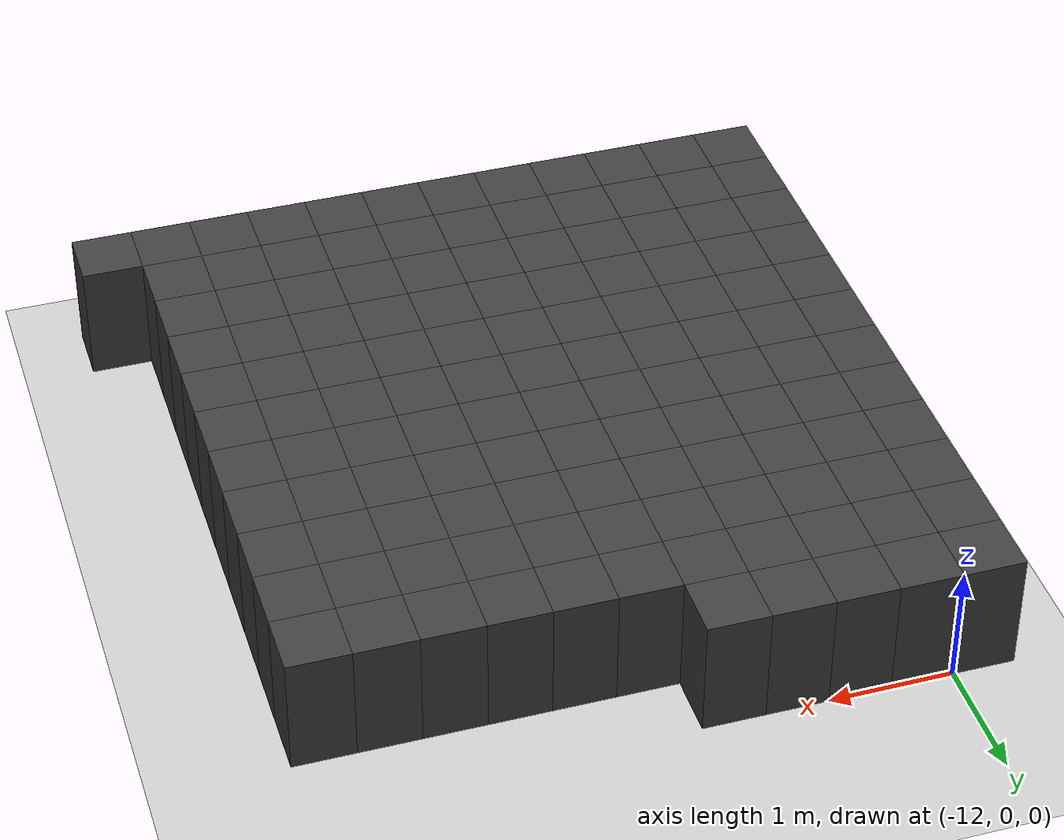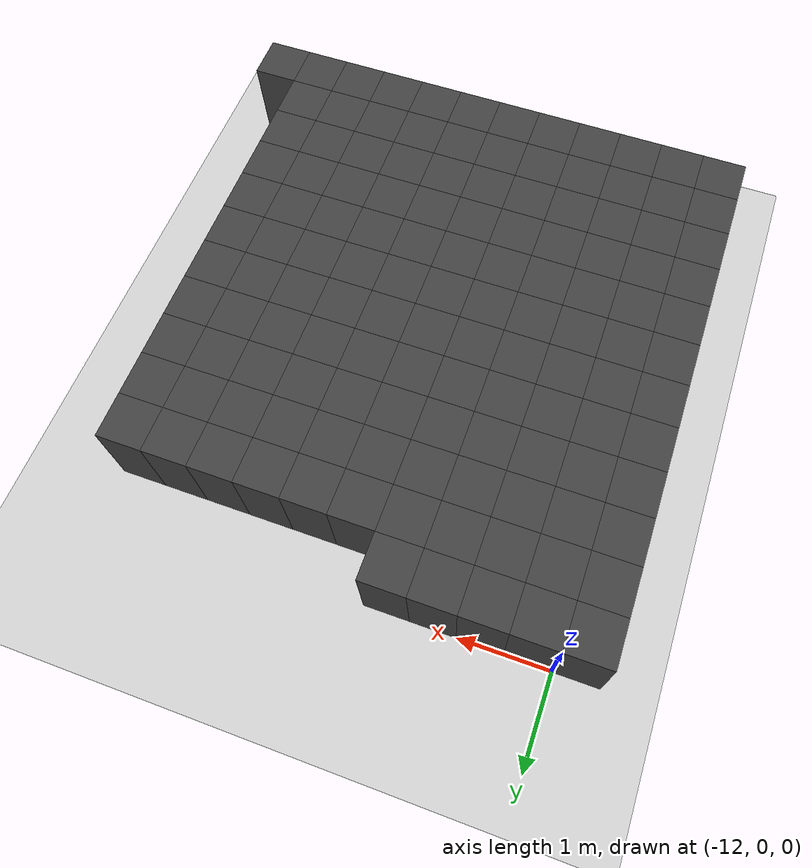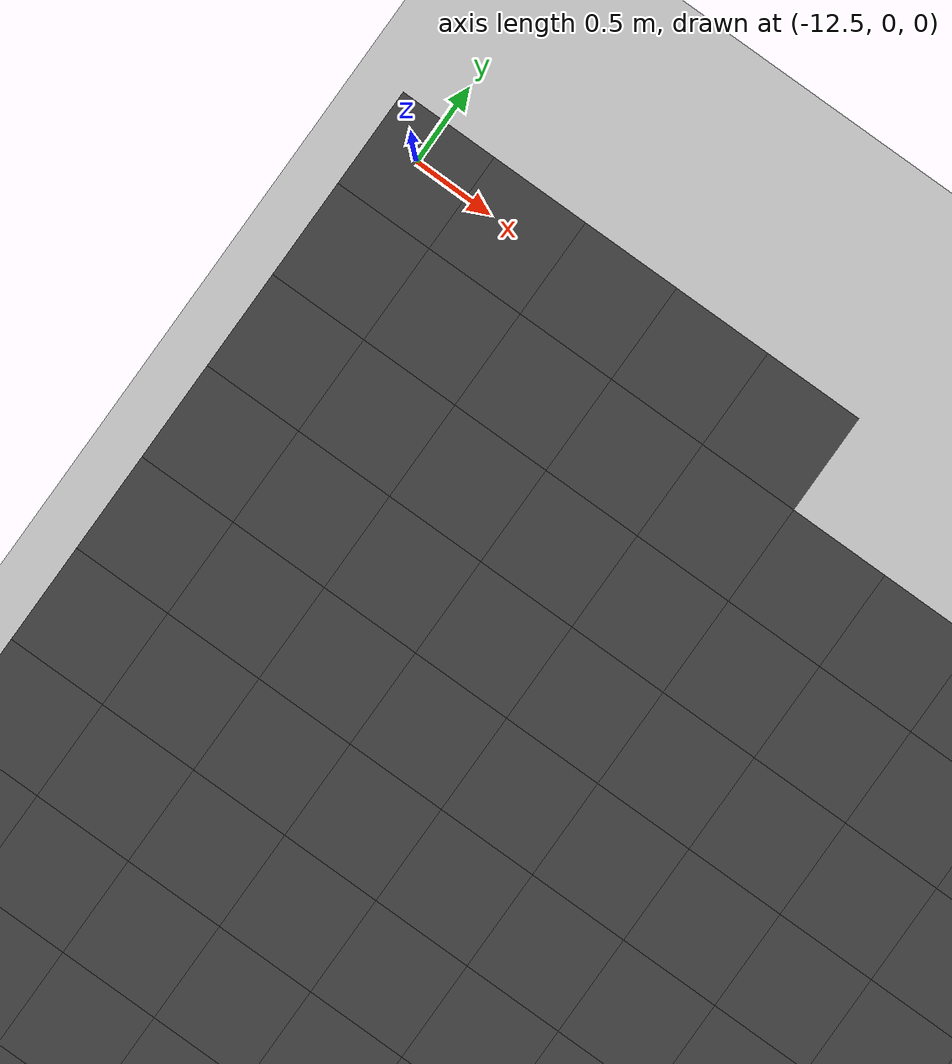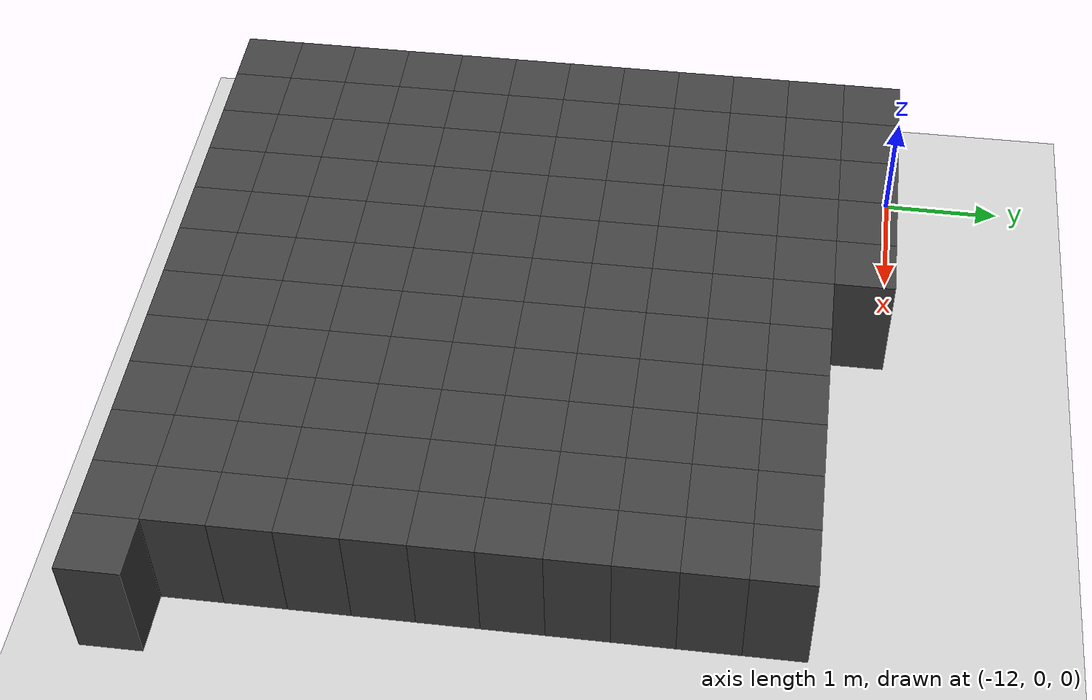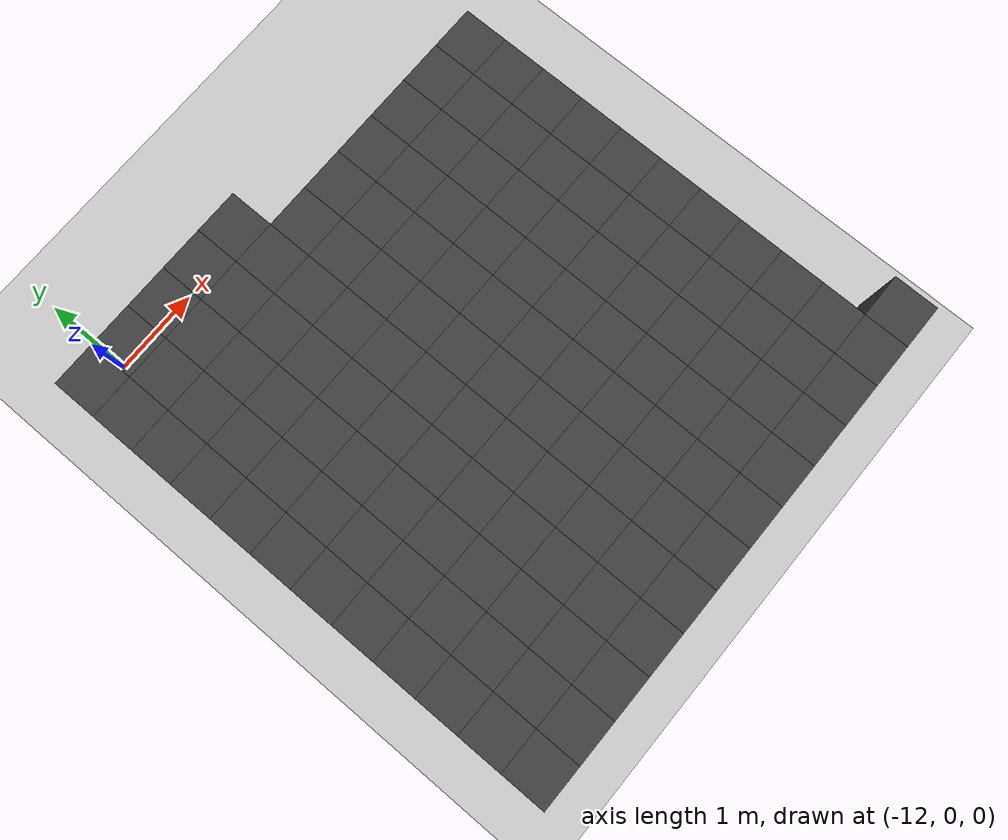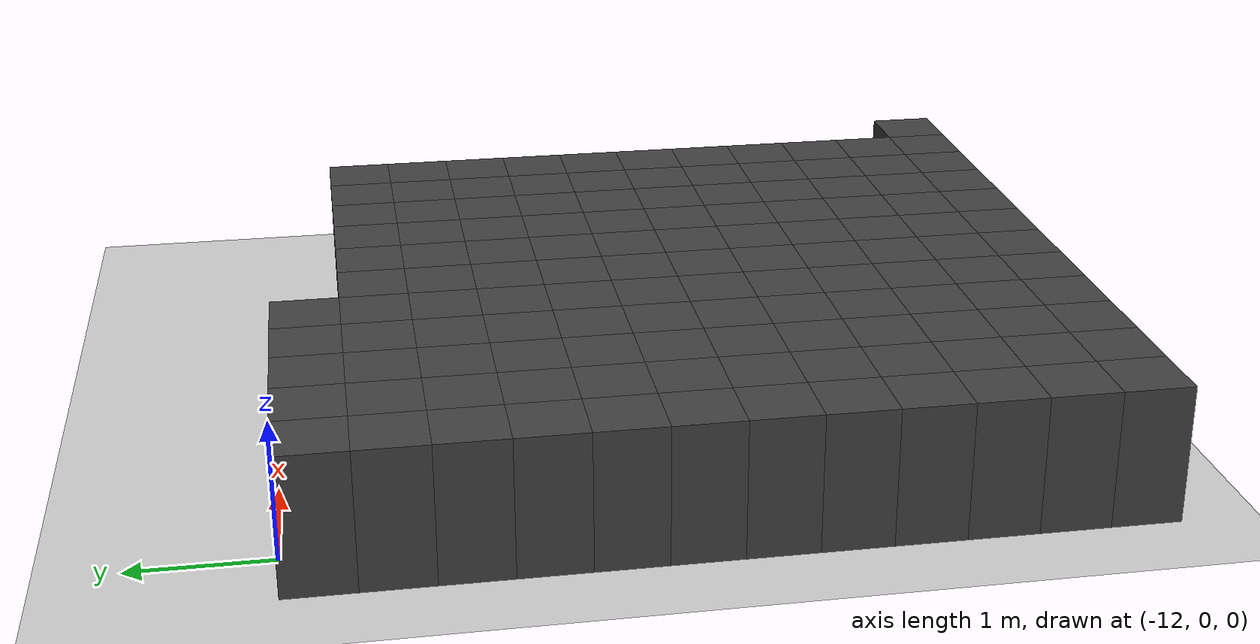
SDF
<sdf version="1.7">
 <world name="map_11515">
  <model name="ground_plane">
   <static>true</static>
   <link name="link">
    <collision name="collision">
     <geometry><plane><normal>0 0 1</normal><size>200 200</size></plane></geometry>
    </collision>
    <visual name="visual">
     <geometry><plane><normal>0 0 1</normal><size>200 200</size></plane></geometry>
     <material><ambient>0.8 0.8 0.8 1</ambient><diffuse>0.8 0.8 0.8 1</diffuse></material>
    </visual>
   </link>
  </model>
  <model name="maze_environment">
   <static>true</static>
   <link name="wall_1031">
    <pose>-12.250 -0.250 0.500 0 0 0</pose>
    <collision name="col"><geometry><box><size>0.5 0.5 1.0</size></box></geometry></collision>
    <visual name="vis">
     <geometry><box><size>0.5 0.5 1.0</size></box></geometry>
     <material><ambient>0.15 0.15 0.15 1</ambient><diffuse>0.25 0.25 0.25 1</diffuse></material>
    </visual>
   </link>
   <link name="wall_1032">
    <pose>-11.750 -0.250 0.500 0 0 0</pose>
    <collision name="col"><geometry><box><size>0.5 0.5 1.0</size></box></geometry></collision>
    <visual name="vis">
     <geometry><box><size>0.5 0.5 1.0</size></box></geometry>
     <material><ambient>0.15 0.15 0.15 1</ambient><diffuse>0.25 0.25 0.25 1</diffuse></material>
    </visual>
   </link>
   <link name="wall_1033">
    <pose>-11.250 -0.250 0.500 0 0 0</pose>
    <collision name="col"><geometry><box><size>0.5 0.5 1.0</size></box></geometry></collision>
    <visual name="vis">
     <geometry><box><size>0.5 0.5 1.0</size></box></geometry>
     <material><ambient>0.15 0.15 0.15 1</ambient><diffuse>0.25 0.25 0.25 1</diffuse></material>
    </visual>
   </link>
   <link name="wall_1034">
    <pose>-10.750 -0.250 0.500 0 0 0</pose>
    <collision name="col"><geometry><box><size>0.5 0.5 1.0</size></box></geometry></collision>
    <visual name="vis">
     <geometry><box><size>0.5 0.5 1.0</size></box></geometry>
     <material><ambient>0.15 0.15 0.15 1</ambient><diffuse>0.25 0.25 0.25 1</diffuse></material>
    </visual>
   </link>
   <link name="wall_1035">
    <pose>-10.250 -0.250 0.500 0 0 0</pose>
    <collision name="col"><geometry><box><size>0.5 0.5 1.0</size></box></geometry></collision>
    <visual name="vis">
     <geometry><box><size>0.5 0.5 1.0</size></box></geometry>
     <material><ambient>0.15 0.15 0.15 1</ambient><diffuse>0.25 0.25 0.25 1</diffuse></material>
    </visual>
   </link>
   <link name="wall_1080">
    <pose>-12.250 -0.750 0.500 0 0 0</pose>
    <collision name="col"><geometry><box><size>0.5 0.5 1.0</size></box></geometry></collision>
    <visual name="vis">
     <geometry><box><size>0.5 0.5 1.0</size></box></geometry>
     <material><ambient>0.15 0.15 0.15 1</ambient><diffuse>0.25 0.25 0.25 1</diffuse></material>
    </visual>
   </link>
   <link name="wall_1081">
    <pose>-11.750 -0.750 0.500 0 0 0</pose>
    <collision name="col"><geometry><box><size>0.5 0.5 1.0</size></box></geometry></collision>
    <visual name="vis">
     <geometry><box><size>0.5 0.5 1.0</size></box></geometry>
     <material><ambient>0.15 0.15 0.15 1</ambient><diffuse>0.25 0.25 0.25 1</diffuse></material>
    </visual>
   </link>
   <link name="wall_1082">
    <pose>-11.250 -0.750 0.500 0 0 0</pose>
    <collision name="col"><geometry><box><size>0.5 0.5 1.0</size></box></geometry></collision>
    <visual name="vis">
     <geometry><box><size>0.5 0.5 1.0</size></box></geometry>
     <material><ambient>0.15 0.15 0.15 1</ambient><diffuse>0.25 0.25 0.25 1</diffuse></material>
    </visual>
   </link>
   <link name="wall_1083">
    <pose>-10.750 -0.750 0.500 0 0 0</pose>
    <collision name="col"><geometry><box><size>0.5 0.5 1.0</size></box></geometry></collision>
    <visual name="vis">
     <geometry><box><size>0.5 0.5 1.0</size></box></geometry>
     <material><ambient>0.15 0.15 0.15 1</ambient><diffuse>0.25 0.25 0.25 1</diffuse></material>
    </visual>
   </link>
   <link name="wall_1084">
    <pose>-10.250 -0.750 0.500 0 0 0</pose>
    <collision name="col"><geometry><box><size>0.5 0.5 1.0</size></box></geometry></collision>
    <visual name="vis">
     <geometry><box><size>0.5 0.5 1.0</size></box></geometry>
     <material><ambient>0.15 0.15 0.15 1</ambient><diffuse>0.25 0.25 0.25 1</diffuse></material>
    </visual>
   </link>
   <link name="wall_1085">
    <pose>-9.750 -0.750 0.500 0 0 0</pose>
    <collision name="col"><geometry><box><size>0.5 0.5 1.0</size></box></geometry></collision>
    <visual name="vis">
     <geometry><box><size>0.5 0.5 1.0</size></box></geometry>
     <material><ambient>0.15 0.15 0.15 1</ambient><diffuse>0.25 0.25 0.25 1</diffuse></material>
    </visual>
   </link>
   <link name="wall_1086">
    <pose>-9.250 -0.750 0.500 0 0 0</pose>
    <collision name="col"><geometry><box><size>0.5 0.5 1.0</size></box></geometry></collision>
    <visual name="vis">
     <geometry><box><size>0.5 0.5 1.0</size></box></geometry>
     <material><ambient>0.15 0.15 0.15 1</ambient><diffuse>0.25 0.25 0.25 1</diffuse></material>
    </visual>
   </link>
   <link name="wall_1087">
    <pose>-8.750 -0.750 0.500 0 0 0</pose>
    <collision name="col"><geometry><box><size>0.5 0.5 1.0</size></box></geometry></collision>
    <visual name="vis">
     <geometry><box><size>0.5 0.5 1.0</size></box></geometry>
     <material><ambient>0.15 0.15 0.15 1</ambient><diffuse>0.25 0.25 0.25 1</diffuse></material>
    </visual>
   </link>
   <link name="wall_1088">
    <pose>-8.250 -0.750 0.500 0 0 0</pose>
    <collision name="col"><geometry><box><size>0.5 0.5 1.0</size></box></geometry></collision>
    <visual name="vis">
     <geometry><box><size>0.5 0.5 1.0</size></box></geometry>
     <material><ambient>0.15 0.15 0.15 1</ambient><diffuse>0.25 0.25 0.25 1</diffuse></material>
    </visual>
   </link>
   <link name="wall_1089">
    <pose>-7.750 -0.750 0.500 0 0 0</pose>
    <collision name="col"><geometry><box><size>0.5 0.5 1.0</size></box></geometry></collision>
    <visual name="vis">
     <geometry><box><size>0.5 0.5 1.0</size></box></geometry>
     <material><ambient>0.15 0.15 0.15 1</ambient><diffuse>0.25 0.25 0.25 1</diffuse></material>
    </visual>
   </link>
   <link name="wall_1090">
    <pose>-7.250 -0.750 0.500 0 0 0</pose>
    <collision name="col"><geometry><box><size>0.5 0.5 1.0</size></box></geometry></collision>
    <visual name="vis">
     <geometry><box><size>0.5 0.5 1.0</size></box></geometry>
     <material><ambient>0.15 0.15 0.15 1</ambient><diffuse>0.25 0.25 0.25 1</diffuse></material>
    </visual>
   </link>
   <link name="wall_1129">
    <pose>-12.250 -1.250 0.500 0 0 0</pose>
    <collision name="col"><geometry><box><size>0.5 0.5 1.0</size></box></geometry></collision>
    <visual name="vis">
     <geometry><box><size>0.5 0.5 1.0</size></box></geometry>
     <material><ambient>0.15 0.15 0.15 1</ambient><diffuse>0.25 0.25 0.25 1</diffuse></material>
    </visual>
   </link>
   <link name="wall_1130">
    <pose>-11.750 -1.250 0.500 0 0 0</pose>
    <collision name="col"><geometry><box><size>0.5 0.5 1.0</size></box></geometry></collision>
    <visual name="vis">
     <geometry><box><size>0.5 0.5 1.0</size></box></geometry>
     <material><ambient>0.15 0.15 0.15 1</ambient><diffuse>0.25 0.25 0.25 1</diffuse></material>
    </visual>
   </link>
   <link name="wall_1131">
    <pose>-11.250 -1.250 0.500 0 0 0</pose>
    <collision name="col"><geometry><box><size>0.5 0.5 1.0</size></box></geometry></collision>
    <visual name="vis">
     <geometry><box><size>0.5 0.5 1.0</size></box></geometry>
     <material><ambient>0.15 0.15 0.15 1</ambient><diffuse>0.25 0.25 0.25 1</diffuse></material>
    </visual>
   </link>
   <link name="wall_1132">
    <pose>-10.750 -1.250 0.500 0 0 0</pose>
    <collision name="col"><geometry><box><size>0.5 0.5 1.0</size></box></geometry></collision>
    <visual name="vis">
     <geometry><box><size>0.5 0.5 1.0</size></box></geometry>
     <material><ambient>0.15 0.15 0.15 1</ambient><diffuse>0.25 0.25 0.25 1</diffuse></material>
    </visual>
   </link>
   <link name="wall_1133">
    <pose>-10.250 -1.250 0.500 0 0 0</pose>
    <collision name="col"><geometry><box><size>0.5 0.5 1.0</size></box></geometry></collision>
    <visual name="vis">
     <geometry><box><size>0.5 0.5 1.0</size></box></geometry>
     <material><ambient>0.15 0.15 0.15 1</ambient><diffuse>0.25 0.25 0.25 1</diffuse></material>
    </visual>
   </link>
   <link name="wall_1134">
    <pose>-9.750 -1.250 0.500 0 0 0</pose>
    <collision name="col"><geometry><box><size>0.5 0.5 1.0</size></box></geometry></collision>
    <visual name="vis">
     <geometry><box><size>0.5 0.5 1.0</size></box></geometry>
     <material><ambient>0.15 0.15 0.15 1</ambient><diffuse>0.25 0.25 0.25 1</diffuse></material>
    </visual>
   </link>
   <link name="wall_1135">
    <pose>-9.250 -1.250 0.500 0 0 0</pose>
    <collision name="col"><geometry><box><size>0.5 0.5 1.0</size></box></geometry></collision>
    <visual name="vis">
     <geometry><box><size>0.5 0.5 1.0</size></box></geometry>
     <material><ambient>0.15 0.15 0.15 1</ambient><diffuse>0.25 0.25 0.25 1</diffuse></material>
    </visual>
   </link>
   <link name="wall_1136">
    <pose>-8.750 -1.250 0.500 0 0 0</pose>
    <collision name="col"><geometry><box><size>0.5 0.5 1.0</size></box></geometry></collision>
    <visual name="vis">
     <geometry><box><size>0.5 0.5 1.0</size></box></geometry>
     <material><ambient>0.15 0.15 0.15 1</ambient><diffuse>0.25 0.25 0.25 1</diffuse></material>
    </visual>
   </link>
   <link name="wall_1137">
    <pose>-8.250 -1.250 0.500 0 0 0</pose>
    <collision name="col"><geometry><box><size>0.5 0.5 1.0</size></box></geometry></collision>
    <visual name="vis">
     <geometry><box><size>0.5 0.5 1.0</size></box></geometry>
     <material><ambient>0.15 0.15 0.15 1</ambient><diffuse>0.25 0.25 0.25 1</diffuse></material>
    </visual>
   </link>
   <link name="wall_1138">
    <pose>-7.750 -1.250 0.500 0 0 0</pose>
    <collision name="col"><geometry><box><size>0.5 0.5 1.0</size></box></geometry></collision>
    <visual name="vis">
     <geometry><box><size>0.5 0.5 1.0</size></box></geometry>
     <material><ambient>0.15 0.15 0.15 1</ambient><diffuse>0.25 0.25 0.25 1</diffuse></material>
    </visual>
   </link>
   <link name="wall_1139">
    <pose>-7.250 -1.250 0.500 0 0 0</pose>
    <collision name="col"><geometry><box><size>0.5 0.5 1.0</size></box></geometry></collision>
    <visual name="vis">
     <geometry><box><size>0.5 0.5 1.0</size></box></geometry>
     <material><ambient>0.15 0.15 0.15 1</ambient><diffuse>0.25 0.25 0.25 1</diffuse></material>
    </visual>
   </link>
   <link name="wall_1178">
    <pose>-12.250 -1.750 0.500 0 0 0</pose>
    <collision name="col"><geometry><box><size>0.5 0.5 1.0</size></box></geometry></collision>
    <visual name="vis">
     <geometry><box><size>0.5 0.5 1.0</size></box></geometry>
     <material><ambient>0.15 0.15 0.15 1</ambient><diffuse>0.25 0.25 0.25 1</diffuse></material>
    </visual>
   </link>
   <link name="wall_1179">
    <pose>-11.750 -1.750 0.500 0 0 0</pose>
    <collision name="col"><geometry><box><size>0.5 0.5 1.0</size></box></geometry></collision>
    <visual name="vis">
     <geometry><box><size>0.5 0.5 1.0</size></box></geometry>
     <material><ambient>0.15 0.15 0.15 1</ambient><diffuse>0.25 0.25 0.25 1</diffuse></material>
    </visual>
   </link>
   <link name="wall_1180">
    <pose>-11.250 -1.750 0.500 0 0 0</pose>
    <collision name="col"><geometry><box><size>0.5 0.5 1.0</size></box></geometry></collision>
    <visual name="vis">
     <geometry><box><size>0.5 0.5 1.0</size></box></geometry>
     <material><ambient>0.15 0.15 0.15 1</ambient><diffuse>0.25 0.25 0.25 1</diffuse></material>
    </visual>
   </link>
   <link name="wall_1181">
    <pose>-10.750 -1.750 0.500 0 0 0</pose>
    <collision name="col"><geometry><box><size>0.5 0.5 1.0</size></box></geometry></collision>
    <visual name="vis">
     <geometry><box><size>0.5 0.5 1.0</size></box></geometry>
     <material><ambient>0.15 0.15 0.15 1</ambient><diffuse>0.25 0.25 0.25 1</diffuse></material>
    </visual>
   </link>
   <link name="wall_1182">
    <pose>-10.250 -1.750 0.500 0 0 0</pose>
    <collision name="col"><geometry><box><size>0.5 0.5 1.0</size></box></geometry></collision>
    <visual name="vis">
     <geometry><box><size>0.5 0.5 1.0</size></box></geometry>
     <material><ambient>0.15 0.15 0.15 1</ambient><diffuse>0.25 0.25 0.25 1</diffuse></material>
    </visual>
   </link>
   <link name="wall_1183">
    <pose>-9.750 -1.750 0.500 0 0 0</pose>
    <collision name="col"><geometry><box><size>0.5 0.5 1.0</size></box></geometry></collision>
    <visual name="vis">
     <geometry><box><size>0.5 0.5 1.0</size></box></geometry>
     <material><ambient>0.15 0.15 0.15 1</ambient><diffuse>0.25 0.25 0.25 1</diffuse></material>
    </visual>
   </link>
   <link name="wall_1184">
    <pose>-9.250 -1.750 0.500 0 0 0</pose>
    <collision name="col"><geometry><box><size>0.5 0.5 1.0</size></box></geometry></collision>
    <visual name="vis">
     <geometry><box><size>0.5 0.5 1.0</size></box></geometry>
     <material><ambient>0.15 0.15 0.15 1</ambient><diffuse>0.25 0.25 0.25 1</diffuse></material>
    </visual>
   </link>
   <link name="wall_1185">
    <pose>-8.750 -1.750 0.500 0 0 0</pose>
    <collision name="col"><geometry><box><size>0.5 0.5 1.0</size></box></geometry></collision>
    <visual name="vis">
     <geometry><box><size>0.5 0.5 1.0</size></box></geometry>
     <material><ambient>0.15 0.15 0.15 1</ambient><diffuse>0.25 0.25 0.25 1</diffuse></material>
    </visual>
   </link>
   <link name="wall_1186">
    <pose>-8.250 -1.750 0.500 0 0 0</pose>
    <collision name="col"><geometry><box><size>0.5 0.5 1.0</size></box></geometry></collision>
    <visual name="vis">
     <geometry><box><size>0.5 0.5 1.0</size></box></geometry>
     <material><ambient>0.15 0.15 0.15 1</ambient><diffuse>0.25 0.25 0.25 1</diffuse></material>
    </visual>
   </link>
   <link name="wall_1187">
    <pose>-7.750 -1.750 0.500 0 0 0</pose>
    <collision name="col"><geometry><box><size>0.5 0.5 1.0</size></box></geometry></collision>
    <visual name="vis">
     <geometry><box><size>0.5 0.5 1.0</size></box></geometry>
     <material><ambient>0.15 0.15 0.15 1</ambient><diffuse>0.25 0.25 0.25 1</diffuse></material>
    </visual>
   </link>
   <link name="wall_1188">
    <pose>-7.250 -1.750 0.500 0 0 0</pose>
    <collision name="col"><geometry><box><size>0.5 0.5 1.0</size></box></geometry></collision>
    <visual name="vis">
     <geometry><box><size>0.5 0.5 1.0</size></box></geometry>
     <material><ambient>0.15 0.15 0.15 1</ambient><diffuse>0.25 0.25 0.25 1</diffuse></material>
    </visual>
   </link>
   <link name="wall_1227">
    <pose>-12.250 -2.250 0.500 0 0 0</pose>
    <collision name="col"><geometry><box><size>0.5 0.5 1.0</size></box></geometry></collision>
    <visual name="vis">
     <geometry><box><size>0.5 0.5 1.0</size></box></geometry>
     <material><ambient>0.15 0.15 0.15 1</ambient><diffuse>0.25 0.25 0.25 1</diffuse></material>
    </visual>
   </link>
   <link name="wall_1228">
    <pose>-11.750 -2.250 0.500 0 0 0</pose>
    <collision name="col"><geometry><box><size>0.5 0.5 1.0</size></box></geometry></collision>
    <visual name="vis">
     <geometry><box><size>0.5 0.5 1.0</size></box></geometry>
     <material><ambient>0.15 0.15 0.15 1</ambient><diffuse>0.25 0.25 0.25 1</diffuse></material>
    </visual>
   </link>
   <link name="wall_1229">
    <pose>-11.250 -2.250 0.500 0 0 0</pose>
    <collision name="col"><geometry><box><size>0.5 0.5 1.0</size></box></geometry></collision>
    <visual name="vis">
     <geometry><box><size>0.5 0.5 1.0</size></box></geometry>
     <material><ambient>0.15 0.15 0.15 1</ambient><diffuse>0.25 0.25 0.25 1</diffuse></material>
    </visual>
   </link>
   <link name="wall_1230">
    <pose>-10.750 -2.250 0.500 0 0 0</pose>
    <collision name="col"><geometry><box><size>0.5 0.5 1.0</size></box></geometry></collision>
    <visual name="vis">
     <geometry><box><size>0.5 0.5 1.0</size></box></geometry>
     <material><ambient>0.15 0.15 0.15 1</ambient><diffuse>0.25 0.25 0.25 1</diffuse></material>
    </visual>
   </link>
   <link name="wall_1231">
    <pose>-10.250 -2.250 0.500 0 0 0</pose>
    <collision name="col"><geometry><box><size>0.5 0.5 1.0</size></box></geometry></collision>
    <visual name="vis">
     <geometry><box><size>0.5 0.5 1.0</size></box></geometry>
     <material><ambient>0.15 0.15 0.15 1</ambient><diffuse>0.25 0.25 0.25 1</diffuse></material>
    </visual>
   </link>
   <link name="wall_1232">
    <pose>-9.750 -2.250 0.500 0 0 0</pose>
    <collision name="col"><geometry><box><size>0.5 0.5 1.0</size></box></geometry></collision>
    <visual name="vis">
     <geometry><box><size>0.5 0.5 1.0</size></box></geometry>
     <material><ambient>0.15 0.15 0.15 1</ambient><diffuse>0.25 0.25 0.25 1</diffuse></material>
    </visual>
   </link>
   <link name="wall_1233">
    <pose>-9.250 -2.250 0.500 0 0 0</pose>
    <collision name="col"><geometry><box><size>0.5 0.5 1.0</size></box></geometry></collision>
    <visual name="vis">
     <geometry><box><size>0.5 0.5 1.0</size></box></geometry>
     <material><ambient>0.15 0.15 0.15 1</ambient><diffuse>0.25 0.25 0.25 1</diffuse></material>
    </visual>
   </link>
   <link name="wall_1234">
    <pose>-8.750 -2.250 0.500 0 0 0</pose>
    <collision name="col"><geometry><box><size>0.5 0.5 1.0</size></box></geometry></collision>
    <visual name="vis">
     <geometry><box><size>0.5 0.5 1.0</size></box></geometry>
     <material><ambient>0.15 0.15 0.15 1</ambient><diffuse>0.25 0.25 0.25 1</diffuse></material>
    </visual>
   </link>
   <link name="wall_1235">
    <pose>-8.250 -2.250 0.500 0 0 0</pose>
    <collision name="col"><geometry><box><size>0.5 0.5 1.0</size></box></geometry></collision>
    <visual name="vis">
     <geometry><box><size>0.5 0.5 1.0</size></box></geometry>
     <material><ambient>0.15 0.15 0.15 1</ambient><diffuse>0.25 0.25 0.25 1</diffuse></material>
    </visual>
   </link>
   <link name="wall_1236">
    <pose>-7.750 -2.250 0.500 0 0 0</pose>
    <collision name="col"><geometry><box><size>0.5 0.5 1.0</size></box></geometry></collision>
    <visual name="vis">
     <geometry><box><size>0.5 0.5 1.0</size></box></geometry>
     <material><ambient>0.15 0.15 0.15 1</ambient><diffuse>0.25 0.25 0.25 1</diffuse></material>
    </visual>
   </link>
   <link name="wall_1237">
    <pose>-7.250 -2.250 0.500 0 0 0</pose>
    <collision name="col"><geometry><box><size>0.5 0.5 1.0</size></box></geometry></collision>
    <visual name="vis">
     <geometry><box><size>0.5 0.5 1.0</size></box></geometry>
     <material><ambient>0.15 0.15 0.15 1</ambient><diffuse>0.25 0.25 0.25 1</diffuse></material>
    </visual>
   </link>
   <link name="wall_1273">
    <pose>-12.250 -2.750 0.500 0 0 0</pose>
    <collision name="col"><geometry><box><size>0.5 0.5 1.0</size></box></geometry></collision>
    <visual name="vis">
     <geometry><box><size>0.5 0.5 1.0</size></box></geometry>
     <material><ambient>0.15 0.15 0.15 1</ambient><diffuse>0.25 0.25 0.25 1</diffuse></material>
    </visual>
   </link>
   <link name="wall_1274">
    <pose>-11.750 -2.750 0.500 0 0 0</pose>
    <collision name="col"><geometry><box><size>0.5 0.5 1.0</size></box></geometry></collision>
    <visual name="vis">
     <geometry><box><size>0.5 0.5 1.0</size></box></geometry>
     <material><ambient>0.15 0.15 0.15 1</ambient><diffuse>0.25 0.25 0.25 1</diffuse></material>
    </visual>
   </link>
   <link name="wall_1275">
    <pose>-11.250 -2.750 0.500 0 0 0</pose>
    <collision name="col"><geometry><box><size>0.5 0.5 1.0</size></box></geometry></collision>
    <visual name="vis">
     <geometry><box><size>0.5 0.5 1.0</size></box></geometry>
     <material><ambient>0.15 0.15 0.15 1</ambient><diffuse>0.25 0.25 0.25 1</diffuse></material>
    </visual>
   </link>
   <link name="wall_1276">
    <pose>-10.750 -2.750 0.500 0 0 0</pose>
    <collision name="col"><geometry><box><size>0.5 0.5 1.0</size></box></geometry></collision>
    <visual name="vis">
     <geometry><box><size>0.5 0.5 1.0</size></box></geometry>
     <material><ambient>0.15 0.15 0.15 1</ambient><diffuse>0.25 0.25 0.25 1</diffuse></material>
    </visual>
   </link>
   <link name="wall_1277">
    <pose>-10.250 -2.750 0.500 0 0 0</pose>
    <collision name="col"><geometry><box><size>0.5 0.5 1.0</size></box></geometry></collision>
    <visual name="vis">
     <geometry><box><size>0.5 0.5 1.0</size></box></geometry>
     <material><ambient>0.15 0.15 0.15 1</ambient><diffuse>0.25 0.25 0.25 1</diffuse></material>
    </visual>
   </link>
   <link name="wall_1278">
    <pose>-9.750 -2.750 0.500 0 0 0</pose>
    <collision name="col"><geometry><box><size>0.5 0.5 1.0</size></box></geometry></collision>
    <visual name="vis">
     <geometry><box><size>0.5 0.5 1.0</size></box></geometry>
     <material><ambient>0.15 0.15 0.15 1</ambient><diffuse>0.25 0.25 0.25 1</diffuse></material>
    </visual>
   </link>
   <link name="wall_1279">
    <pose>-9.250 -2.750 0.500 0 0 0</pose>
    <collision name="col"><geometry><box><size>0.5 0.5 1.0</size></box></geometry></collision>
    <visual name="vis">
     <geometry><box><size>0.5 0.5 1.0</size></box></geometry>
     <material><ambient>0.15 0.15 0.15 1</ambient><diffuse>0.25 0.25 0.25 1</diffuse></material>
    </visual>
   </link>
   <link name="wall_1280">
    <pose>-8.750 -2.750 0.500 0 0 0</pose>
    <collision name="col"><geometry><box><size>0.5 0.5 1.0</size></box></geometry></collision>
    <visual name="vis">
     <geometry><box><size>0.5 0.5 1.0</size></box></geometry>
     <material><ambient>0.15 0.15 0.15 1</ambient><diffuse>0.25 0.25 0.25 1</diffuse></material>
    </visual>
   </link>
   <link name="wall_1281">
    <pose>-8.250 -2.750 0.500 0 0 0</pose>
    <collision name="col"><geometry><box><size>0.5 0.5 1.0</size></box></geometry></collision>
    <visual name="vis">
     <geometry><box><size>0.5 0.5 1.0</size></box></geometry>
     <material><ambient>0.15 0.15 0.15 1</ambient><diffuse>0.25 0.25 0.25 1</diffuse></material>
    </visual>
   </link>
   <link name="wall_1282">
    <pose>-7.750 -2.750 0.500 0 0 0</pose>
    <collision name="col"><geometry><box><size>0.5 0.5 1.0</size></box></geometry></collision>
    <visual name="vis">
     <geometry><box><size>0.5 0.5 1.0</size></box></geometry>
     <material><ambient>0.15 0.15 0.15 1</ambient><diffuse>0.25 0.25 0.25 1</diffuse></material>
    </visual>
   </link>
   <link name="wall_1283">
    <pose>-7.250 -2.750 0.500 0 0 0</pose>
    <collision name="col"><geometry><box><size>0.5 0.5 1.0</size></box></geometry></collision>
    <visual name="vis">
     <geometry><box><size>0.5 0.5 1.0</size></box></geometry>
     <material><ambient>0.15 0.15 0.15 1</ambient><diffuse>0.25 0.25 0.25 1</diffuse></material>
    </visual>
   </link>
   <link name="wall_1319">
    <pose>-12.250 -3.250 0.500 0 0 0</pose>
    <collision name="col"><geometry><box><size>0.5 0.5 1.0</size></box></geometry></collision>
    <visual name="vis">
     <geometry><box><size>0.5 0.5 1.0</size></box></geometry>
     <material><ambient>0.15 0.15 0.15 1</ambient><diffuse>0.25 0.25 0.25 1</diffuse></material>
    </visual>
   </link>
   <link name="wall_1320">
    <pose>-11.750 -3.250 0.500 0 0 0</pose>
    <collision name="col"><geometry><box><size>0.5 0.5 1.0</size></box></geometry></collision>
    <visual name="vis">
     <geometry><box><size>0.5 0.5 1.0</size></box></geometry>
     <material><ambient>0.15 0.15 0.15 1</ambient><diffuse>0.25 0.25 0.25 1</diffuse></material>
    </visual>
   </link>
   <link name="wall_1321">
    <pose>-11.250 -3.250 0.500 0 0 0</pose>
    <collision name="col"><geometry><box><size>0.5 0.5 1.0</size></box></geometry></collision>
    <visual name="vis">
     <geometry><box><size>0.5 0.5 1.0</size></box></geometry>
     <material><ambient>0.15 0.15 0.15 1</ambient><diffuse>0.25 0.25 0.25 1</diffuse></material>
    </visual>
   </link>
   <link name="wall_1322">
    <pose>-10.750 -3.250 0.500 0 0 0</pose>
    <collision name="col"><geometry><box><size>0.5 0.5 1.0</size></box></geometry></collision>
    <visual name="vis">
     <geometry><box><size>0.5 0.5 1.0</size></box></geometry>
     <material><ambient>0.15 0.15 0.15 1</ambient><diffuse>0.25 0.25 0.25 1</diffuse></material>
    </visual>
   </link>
   <link name="wall_1323">
    <pose>-10.250 -3.250 0.500 0 0 0</pose>
    <collision name="col"><geometry><box><size>0.5 0.5 1.0</size></box></geometry></collision>
    <visual name="vis">
     <geometry><box><size>0.5 0.5 1.0</size></box></geometry>
     <material><ambient>0.15 0.15 0.15 1</ambient><diffuse>0.25 0.25 0.25 1</diffuse></material>
    </visual>
   </link>
   <link name="wall_1324">
    <pose>-9.750 -3.250 0.500 0 0 0</pose>
    <collision name="col"><geometry><box><size>0.5 0.5 1.0</size></box></geometry></collision>
    <visual name="vis">
     <geometry><box><size>0.5 0.5 1.0</size></box></geometry>
     <material><ambient>0.15 0.15 0.15 1</ambient><diffuse>0.25 0.25 0.25 1</diffuse></material>
    </visual>
   </link>
   <link name="wall_1325">
    <pose>-9.250 -3.250 0.500 0 0 0</pose>
    <collision name="col"><geometry><box><size>0.5 0.5 1.0</size></box></geometry></collision>
    <visual name="vis">
     <geometry><box><size>0.5 0.5 1.0</size></box></geometry>
     <material><ambient>0.15 0.15 0.15 1</ambient><diffuse>0.25 0.25 0.25 1</diffuse></material>
    </visual>
   </link>
   <link name="wall_1326">
    <pose>-8.750 -3.250 0.500 0 0 0</pose>
    <collision name="col"><geometry><box><size>0.5 0.5 1.0</size></box></geometry></collision>
    <visual name="vis">
     <geometry><box><size>0.5 0.5 1.0</size></box></geometry>
     <material><ambient>0.15 0.15 0.15 1</ambient><diffuse>0.25 0.25 0.25 1</diffuse></material>
    </visual>
   </link>
   <link name="wall_1327">
    <pose>-8.250 -3.250 0.500 0 0 0</pose>
    <collision name="col"><geometry><box><size>0.5 0.5 1.0</size></box></geometry></collision>
    <visual name="vis">
     <geometry><box><size>0.5 0.5 1.0</size></box></geometry>
     <material><ambient>0.15 0.15 0.15 1</ambient><diffuse>0.25 0.25 0.25 1</diffuse></material>
    </visual>
   </link>
   <link name="wall_1328">
    <pose>-7.750 -3.250 0.500 0 0 0</pose>
    <collision name="col"><geometry><box><size>0.5 0.5 1.0</size></box></geometry></collision>
    <visual name="vis">
     <geometry><box><size>0.5 0.5 1.0</size></box></geometry>
     <material><ambient>0.15 0.15 0.15 1</ambient><diffuse>0.25 0.25 0.25 1</diffuse></material>
    </visual>
   </link>
   <link name="wall_1329">
    <pose>-7.250 -3.250 0.500 0 0 0</pose>
    <collision name="col"><geometry><box><size>0.5 0.5 1.0</size></box></geometry></collision>
    <visual name="vis">
     <geometry><box><size>0.5 0.5 1.0</size></box></geometry>
     <material><ambient>0.15 0.15 0.15 1</ambient><diffuse>0.25 0.25 0.25 1</diffuse></material>
    </visual>
   </link>
   <link name="wall_1365">
    <pose>-12.250 -3.750 0.500 0 0 0</pose>
    <collision name="col"><geometry><box><size>0.5 0.5 1.0</size></box></geometry></collision>
    <visual name="vis">
     <geometry><box><size>0.5 0.5 1.0</size></box></geometry>
     <material><ambient>0.15 0.15 0.15 1</ambient><diffuse>0.25 0.25 0.25 1</diffuse></material>
    </visual>
   </link>
   <link name="wall_1366">
    <pose>-11.750 -3.750 0.500 0 0 0</pose>
    <collision name="col"><geometry><box><size>0.5 0.5 1.0</size></box></geometry></collision>
    <visual name="vis">
     <geometry><box><size>0.5 0.5 1.0</size></box></geometry>
     <material><ambient>0.15 0.15 0.15 1</ambient><diffuse>0.25 0.25 0.25 1</diffuse></material>
    </visual>
   </link>
   <link name="wall_1367">
    <pose>-11.250 -3.750 0.500 0 0 0</pose>
    <collision name="col"><geometry><box><size>0.5 0.5 1.0</size></box></geometry></collision>
    <visual name="vis">
     <geometry><box><size>0.5 0.5 1.0</size></box></geometry>
     <material><ambient>0.15 0.15 0.15 1</ambient><diffuse>0.25 0.25 0.25 1</diffuse></material>
    </visual>
   </link>
   <link name="wall_1368">
    <pose>-10.750 -3.750 0.500 0 0 0</pose>
    <collision name="col"><geometry><box><size>0.5 0.5 1.0</size></box></geometry></collision>
    <visual name="vis">
     <geometry><box><size>0.5 0.5 1.0</size></box></geometry>
     <material><ambient>0.15 0.15 0.15 1</ambient><diffuse>0.25 0.25 0.25 1</diffuse></material>
    </visual>
   </link>
   <link name="wall_1369">
    <pose>-10.250 -3.750 0.500 0 0 0</pose>
    <collision name="col"><geometry><box><size>0.5 0.5 1.0</size></box></geometry></collision>
    <visual name="vis">
     <geometry><box><size>0.5 0.5 1.0</size></box></geometry>
     <material><ambient>0.15 0.15 0.15 1</ambient><diffuse>0.25 0.25 0.25 1</diffuse></material>
    </visual>
   </link>
   <link name="wall_1370">
    <pose>-9.750 -3.750 0.500 0 0 0</pose>
    <collision name="col"><geometry><box><size>0.5 0.5 1.0</size></box></geometry></collision>
    <visual name="vis">
     <geometry><box><size>0.5 0.5 1.0</size></box></geometry>
     <material><ambient>0.15 0.15 0.15 1</ambient><diffuse>0.25 0.25 0.25 1</diffuse></material>
    </visual>
   </link>
   <link name="wall_1371">
    <pose>-9.250 -3.750 0.500 0 0 0</pose>
    <collision name="col"><geometry><box><size>0.5 0.5 1.0</size></box></geometry></collision>
    <visual name="vis">
     <geometry><box><size>0.5 0.5 1.0</size></box></geometry>
     <material><ambient>0.15 0.15 0.15 1</ambient><diffuse>0.25 0.25 0.25 1</diffuse></material>
    </visual>
   </link>
   <link name="wall_1372">
    <pose>-8.750 -3.750 0.500 0 0 0</pose>
    <collision name="col"><geometry><box><size>0.5 0.5 1.0</size></box></geometry></collision>
    <visual name="vis">
     <geometry><box><size>0.5 0.5 1.0</size></box></geometry>
     <material><ambient>0.15 0.15 0.15 1</ambient><diffuse>0.25 0.25 0.25 1</diffuse></material>
    </visual>
   </link>
   <link name="wall_1373">
    <pose>-8.250 -3.750 0.500 0 0 0</pose>
    <collision name="col"><geometry><box><size>0.5 0.5 1.0</size></box></geometry></collision>
    <visual name="vis">
     <geometry><box><size>0.5 0.5 1.0</size></box></geometry>
     <material><ambient>0.15 0.15 0.15 1</ambient><diffuse>0.25 0.25 0.25 1</diffuse></material>
    </visual>
   </link>
   <link name="wall_1374">
    <pose>-7.750 -3.750 0.500 0 0 0</pose>
    <collision name="col"><geometry><box><size>0.5 0.5 1.0</size></box></geometry></collision>
    <visual name="vis">
     <geometry><box><size>0.5 0.5 1.0</size></box></geometry>
     <material><ambient>0.15 0.15 0.15 1</ambient><diffuse>0.25 0.25 0.25 1</diffuse></material>
    </visual>
   </link>
   <link name="wall_1375">
    <pose>-7.250 -3.750 0.500 0 0 0</pose>
    <collision name="col"><geometry><box><size>0.5 0.5 1.0</size></box></geometry></collision>
    <visual name="vis">
     <geometry><box><size>0.5 0.5 1.0</size></box></geometry>
     <material><ambient>0.15 0.15 0.15 1</ambient><diffuse>0.25 0.25 0.25 1</diffuse></material>
    </visual>
   </link>
   <link name="wall_1411">
    <pose>-12.250 -4.250 0.500 0 0 0</pose>
    <collision name="col"><geometry><box><size>0.5 0.5 1.0</size></box></geometry></collision>
    <visual name="vis">
     <geometry><box><size>0.5 0.5 1.0</size></box></geometry>
     <material><ambient>0.15 0.15 0.15 1</ambient><diffuse>0.25 0.25 0.25 1</diffuse></material>
    </visual>
   </link>
   <link name="wall_1412">
    <pose>-11.750 -4.250 0.500 0 0 0</pose>
    <collision name="col"><geometry><box><size>0.5 0.5 1.0</size></box></geometry></collision>
    <visual name="vis">
     <geometry><box><size>0.5 0.5 1.0</size></box></geometry>
     <material><ambient>0.15 0.15 0.15 1</ambient><diffuse>0.25 0.25 0.25 1</diffuse></material>
    </visual>
   </link>
   <link name="wall_1413">
    <pose>-11.250 -4.250 0.500 0 0 0</pose>
    <collision name="col"><geometry><box><size>0.5 0.5 1.0</size></box></geometry></collision>
    <visual name="vis">
     <geometry><box><size>0.5 0.5 1.0</size></box></geometry>
     <material><ambient>0.15 0.15 0.15 1</ambient><diffuse>0.25 0.25 0.25 1</diffuse></material>
    </visual>
   </link>
   <link name="wall_1414">
    <pose>-10.750 -4.250 0.500 0 0 0</pose>
    <collision name="col"><geometry><box><size>0.5 0.5 1.0</size></box></geometry></collision>
    <visual name="vis">
     <geometry><box><size>0.5 0.5 1.0</size></box></geometry>
     <material><ambient>0.15 0.15 0.15 1</ambient><diffuse>0.25 0.25 0.25 1</diffuse></material>
    </visual>
   </link>
   <link name="wall_1415">
    <pose>-10.250 -4.250 0.500 0 0 0</pose>
    <collision name="col"><geometry><box><size>0.5 0.5 1.0</size></box></geometry></collision>
    <visual name="vis">
     <geometry><box><size>0.5 0.5 1.0</size></box></geometry>
     <material><ambient>0.15 0.15 0.15 1</ambient><diffuse>0.25 0.25 0.25 1</diffuse></material>
    </visual>
   </link>
   <link name="wall_1416">
    <pose>-9.750 -4.250 0.500 0 0 0</pose>
    <collision name="col"><geometry><box><size>0.5 0.5 1.0</size></box></geometry></collision>
    <visual name="vis">
     <geometry><box><size>0.5 0.5 1.0</size></box></geometry>
     <material><ambient>0.15 0.15 0.15 1</ambient><diffuse>0.25 0.25 0.25 1</diffuse></material>
    </visual>
   </link>
   <link name="wall_1417">
    <pose>-9.250 -4.250 0.500 0 0 0</pose>
    <collision name="col"><geometry><box><size>0.5 0.5 1.0</size></box></geometry></collision>
    <visual name="vis">
     <geometry><box><size>0.5 0.5 1.0</size></box></geometry>
     <material><ambient>0.15 0.15 0.15 1</ambient><diffuse>0.25 0.25 0.25 1</diffuse></material>
    </visual>
   </link>
   <link name="wall_1418">
    <pose>-8.750 -4.250 0.500 0 0 0</pose>
    <collision name="col"><geometry><box><size>0.5 0.5 1.0</size></box></geometry></collision>
    <visual name="vis">
     <geometry><box><size>0.5 0.5 1.0</size></box></geometry>
     <material><ambient>0.15 0.15 0.15 1</ambient><diffuse>0.25 0.25 0.25 1</diffuse></material>
    </visual>
   </link>
   <link name="wall_1419">
    <pose>-8.250 -4.250 0.500 0 0 0</pose>
    <collision name="col"><geometry><box><size>0.5 0.5 1.0</size></box></geometry></collision>
    <visual name="vis">
     <geometry><box><size>0.5 0.5 1.0</size></box></geometry>
     <material><ambient>0.15 0.15 0.15 1</ambient><diffuse>0.25 0.25 0.25 1</diffuse></material>
    </visual>
   </link>
   <link name="wall_1420">
    <pose>-7.750 -4.250 0.500 0 0 0</pose>
    <collision name="col"><geometry><box><size>0.5 0.5 1.0</size></box></geometry></collision>
    <visual name="vis">
     <geometry><box><size>0.5 0.5 1.0</size></box></geometry>
     <material><ambient>0.15 0.15 0.15 1</ambient><diffuse>0.25 0.25 0.25 1</diffuse></material>
    </visual>
   </link>
   <link name="wall_1421">
    <pose>-7.250 -4.250 0.500 0 0 0</pose>
    <collision name="col"><geometry><box><size>0.5 0.5 1.0</size></box></geometry></collision>
    <visual name="vis">
     <geometry><box><size>0.5 0.5 1.0</size></box></geometry>
     <material><ambient>0.15 0.15 0.15 1</ambient><diffuse>0.25 0.25 0.25 1</diffuse></material>
    </visual>
   </link>
   <link name="wall_1457">
    <pose>-12.250 -4.750 0.500 0 0 0</pose>
    <collision name="col"><geometry><box><size>0.5 0.5 1.0</size></box></geometry></collision>
    <visual name="vis">
     <geometry><box><size>0.5 0.5 1.0</size></box></geometry>
     <material><ambient>0.15 0.15 0.15 1</ambient><diffuse>0.25 0.25 0.25 1</diffuse></material>
    </visual>
   </link>
   <link name="wall_1458">
    <pose>-11.750 -4.750 0.500 0 0 0</pose>
    <collision name="col"><geometry><box><size>0.5 0.5 1.0</size></box></geometry></collision>
    <visual name="vis">
     <geometry><box><size>0.5 0.5 1.0</size></box></geometry>
     <material><ambient>0.15 0.15 0.15 1</ambient><diffuse>0.25 0.25 0.25 1</diffuse></material>
    </visual>
   </link>
   <link name="wall_1459">
    <pose>-11.250 -4.750 0.500 0 0 0</pose>
    <collision name="col"><geometry><box><size>0.5 0.5 1.0</size></box></geometry></collision>
    <visual name="vis">
     <geometry><box><size>0.5 0.5 1.0</size></box></geometry>
     <material><ambient>0.15 0.15 0.15 1</ambient><diffuse>0.25 0.25 0.25 1</diffuse></material>
    </visual>
   </link>
   <link name="wall_1460">
    <pose>-10.750 -4.750 0.500 0 0 0</pose>
    <collision name="col"><geometry><box><size>0.5 0.5 1.0</size></box></geometry></collision>
    <visual name="vis">
     <geometry><box><size>0.5 0.5 1.0</size></box></geometry>
     <material><ambient>0.15 0.15 0.15 1</ambient><diffuse>0.25 0.25 0.25 1</diffuse></material>
    </visual>
   </link>
   <link name="wall_1461">
    <pose>-10.250 -4.750 0.500 0 0 0</pose>
    <collision name="col"><geometry><box><size>0.5 0.5 1.0</size></box></geometry></collision>
    <visual name="vis">
     <geometry><box><size>0.5 0.5 1.0</size></box></geometry>
     <material><ambient>0.15 0.15 0.15 1</ambient><diffuse>0.25 0.25 0.25 1</diffuse></material>
    </visual>
   </link>
   <link name="wall_1462">
    <pose>-9.750 -4.750 0.500 0 0 0</pose>
    <collision name="col"><geometry><box><size>0.5 0.5 1.0</size></box></geometry></collision>
    <visual name="vis">
     <geometry><box><size>0.5 0.5 1.0</size></box></geometry>
     <material><ambient>0.15 0.15 0.15 1</ambient><diffuse>0.25 0.25 0.25 1</diffuse></material>
    </visual>
   </link>
   <link name="wall_1463">
    <pose>-9.250 -4.750 0.500 0 0 0</pose>
    <collision name="col"><geometry><box><size>0.5 0.5 1.0</size></box></geometry></collision>
    <visual name="vis">
     <geometry><box><size>0.5 0.5 1.0</size></box></geometry>
     <material><ambient>0.15 0.15 0.15 1</ambient><diffuse>0.25 0.25 0.25 1</diffuse></material>
    </visual>
   </link>
   <link name="wall_1464">
    <pose>-8.750 -4.750 0.500 0 0 0</pose>
    <collision name="col"><geometry><box><size>0.5 0.5 1.0</size></box></geometry></collision>
    <visual name="vis">
     <geometry><box><size>0.5 0.5 1.0</size></box></geometry>
     <material><ambient>0.15 0.15 0.15 1</ambient><diffuse>0.25 0.25 0.25 1</diffuse></material>
    </visual>
   </link>
   <link name="wall_1465">
    <pose>-8.250 -4.750 0.500 0 0 0</pose>
    <collision name="col"><geometry><box><size>0.5 0.5 1.0</size></box></geometry></collision>
    <visual name="vis">
     <geometry><box><size>0.5 0.5 1.0</size></box></geometry>
     <material><ambient>0.15 0.15 0.15 1</ambient><diffuse>0.25 0.25 0.25 1</diffuse></material>
    </visual>
   </link>
   <link name="wall_1466">
    <pose>-7.750 -4.750 0.500 0 0 0</pose>
    <collision name="col"><geometry><box><size>0.5 0.5 1.0</size></box></geometry></collision>
    <visual name="vis">
     <geometry><box><size>0.5 0.5 1.0</size></box></geometry>
     <material><ambient>0.15 0.15 0.15 1</ambient><diffuse>0.25 0.25 0.25 1</diffuse></material>
    </visual>
   </link>
   <link name="wall_1467">
    <pose>-7.250 -4.750 0.500 0 0 0</pose>
    <collision name="col"><geometry><box><size>0.5 0.5 1.0</size></box></geometry></collision>
    <visual name="vis">
     <geometry><box><size>0.5 0.5 1.0</size></box></geometry>
     <material><ambient>0.15 0.15 0.15 1</ambient><diffuse>0.25 0.25 0.25 1</diffuse></material>
    </visual>
   </link>
   <link name="wall_1503">
    <pose>-12.250 -5.250 0.500 0 0 0</pose>
    <collision name="col"><geometry><box><size>0.5 0.5 1.0</size></box></geometry></collision>
    <visual name="vis">
     <geometry><box><size>0.5 0.5 1.0</size></box></geometry>
     <material><ambient>0.15 0.15 0.15 1</ambient><diffuse>0.25 0.25 0.25 1</diffuse></material>
    </visual>
   </link>
   <link name="wall_1504">
    <pose>-11.750 -5.250 0.500 0 0 0</pose>
    <collision name="col"><geometry><box><size>0.5 0.5 1.0</size></box></geometry></collision>
    <visual name="vis">
     <geometry><box><size>0.5 0.5 1.0</size></box></geometry>
     <material><ambient>0.15 0.15 0.15 1</ambient><diffuse>0.25 0.25 0.25 1</diffuse></material>
    </visual>
   </link>
   <link name="wall_1505">
    <pose>-11.250 -5.250 0.500 0 0 0</pose>
    <collision name="col"><geometry><box><size>0.5 0.5 1.0</size></box></geometry></collision>
    <visual name="vis">
     <geometry><box><size>0.5 0.5 1.0</size></box></geometry>
     <material><ambient>0.15 0.15 0.15 1</ambient><diffuse>0.25 0.25 0.25 1</diffuse></material>
    </visual>
   </link>
   <link name="wall_1506">
    <pose>-10.750 -5.250 0.500 0 0 0</pose>
    <collision name="col"><geometry><box><size>0.5 0.5 1.0</size></box></geometry></collision>
    <visual name="vis">
     <geometry><box><size>0.5 0.5 1.0</size></box></geometry>
     <material><ambient>0.15 0.15 0.15 1</ambient><diffuse>0.25 0.25 0.25 1</diffuse></material>
    </visual>
   </link>
   <link name="wall_1507">
    <pose>-10.250 -5.250 0.500 0 0 0</pose>
    <collision name="col"><geometry><box><size>0.5 0.5 1.0</size></box></geometry></collision>
    <visual name="vis">
     <geometry><box><size>0.5 0.5 1.0</size></box></geometry>
     <material><ambient>0.15 0.15 0.15 1</ambient><diffuse>0.25 0.25 0.25 1</diffuse></material>
    </visual>
   </link>
   <link name="wall_1508">
    <pose>-9.750 -5.250 0.500 0 0 0</pose>
    <collision name="col"><geometry><box><size>0.5 0.5 1.0</size></box></geometry></collision>
    <visual name="vis">
     <geometry><box><size>0.5 0.5 1.0</size></box></geometry>
     <material><ambient>0.15 0.15 0.15 1</ambient><diffuse>0.25 0.25 0.25 1</diffuse></material>
    </visual>
   </link>
   <link name="wall_1509">
    <pose>-9.250 -5.250 0.500 0 0 0</pose>
    <collision name="col"><geometry><box><size>0.5 0.5 1.0</size></box></geometry></collision>
    <visual name="vis">
     <geometry><box><size>0.5 0.5 1.0</size></box></geometry>
     <material><ambient>0.15 0.15 0.15 1</ambient><diffuse>0.25 0.25 0.25 1</diffuse></material>
    </visual>
   </link>
   <link name="wall_1510">
    <pose>-8.750 -5.250 0.500 0 0 0</pose>
    <collision name="col"><geometry><box><size>0.5 0.5 1.0</size></box></geometry></collision>
    <visual name="vis">
     <geometry><box><size>0.5 0.5 1.0</size></box></geometry>
     <material><ambient>0.15 0.15 0.15 1</ambient><diffuse>0.25 0.25 0.25 1</diffuse></material>
    </visual>
   </link>
   <link name="wall_1511">
    <pose>-8.250 -5.250 0.500 0 0 0</pose>
    <collision name="col"><geometry><box><size>0.5 0.5 1.0</size></box></geometry></collision>
    <visual name="vis">
     <geometry><box><size>0.5 0.5 1.0</size></box></geometry>
     <material><ambient>0.15 0.15 0.15 1</ambient><diffuse>0.25 0.25 0.25 1</diffuse></material>
    </visual>
   </link>
   <link name="wall_1512">
    <pose>-7.750 -5.250 0.500 0 0 0</pose>
    <collision name="col"><geometry><box><size>0.5 0.5 1.0</size></box></geometry></collision>
    <visual name="vis">
     <geometry><box><size>0.5 0.5 1.0</size></box></geometry>
     <material><ambient>0.15 0.15 0.15 1</ambient><diffuse>0.25 0.25 0.25 1</diffuse></material>
    </visual>
   </link>
   <link name="wall_1513">
    <pose>-7.250 -5.250 0.500 0 0 0</pose>
    <collision name="col"><geometry><box><size>0.5 0.5 1.0</size></box></geometry></collision>
    <visual name="vis">
     <geometry><box><size>0.5 0.5 1.0</size></box></geometry>
     <material><ambient>0.15 0.15 0.15 1</ambient><diffuse>0.25 0.25 0.25 1</diffuse></material>
    </visual>
   </link>
   <link name="wall_1552">
    <pose>-12.250 -5.750 0.500 0 0 0</pose>
    <collision name="col"><geometry><box><size>0.5 0.5 1.0</size></box></geometry></collision>
    <visual name="vis">
     <geometry><box><size>0.5 0.5 1.0</size></box></geometry>
     <material><ambient>0.15 0.15 0.15 1</ambient><diffuse>0.25 0.25 0.25 1</diffuse></material>
    </visual>
   </link>
   <link name="wall_1553">
    <pose>-11.750 -5.750 0.500 0 0 0</pose>
    <collision name="col"><geometry><box><size>0.5 0.5 1.0</size></box></geometry></collision>
    <visual name="vis">
     <geometry><box><size>0.5 0.5 1.0</size></box></geometry>
     <material><ambient>0.15 0.15 0.15 1</ambient><diffuse>0.25 0.25 0.25 1</diffuse></material>
    </visual>
   </link>
   <link name="wall_1554">
    <pose>-11.250 -5.750 0.500 0 0 0</pose>
    <collision name="col"><geometry><box><size>0.5 0.5 1.0</size></box></geometry></collision>
    <visual name="vis">
     <geometry><box><size>0.5 0.5 1.0</size></box></geometry>
     <material><ambient>0.15 0.15 0.15 1</ambient><diffuse>0.25 0.25 0.25 1</diffuse></material>
    </visual>
   </link>
   <link name="wall_1555">
    <pose>-10.750 -5.750 0.500 0 0 0</pose>
    <collision name="col"><geometry><box><size>0.5 0.5 1.0</size></box></geometry></collision>
    <visual name="vis">
     <geometry><box><size>0.5 0.5 1.0</size></box></geometry>
     <material><ambient>0.15 0.15 0.15 1</ambient><diffuse>0.25 0.25 0.25 1</diffuse></material>
    </visual>
   </link>
   <link name="wall_1556">
    <pose>-10.250 -5.750 0.500 0 0 0</pose>
    <collision name="col"><geometry><box><size>0.5 0.5 1.0</size></box></geometry></collision>
    <visual name="vis">
     <geometry><box><size>0.5 0.5 1.0</size></box></geometry>
     <material><ambient>0.15 0.15 0.15 1</ambient><diffuse>0.25 0.25 0.25 1</diffuse></material>
    </visual>
   </link>
   <link name="wall_1557">
    <pose>-9.750 -5.750 0.500 0 0 0</pose>
    <collision name="col"><geometry><box><size>0.5 0.5 1.0</size></box></geometry></collision>
    <visual name="vis">
     <geometry><box><size>0.5 0.5 1.0</size></box></geometry>
     <material><ambient>0.15 0.15 0.15 1</ambient><diffuse>0.25 0.25 0.25 1</diffuse></material>
    </visual>
   </link>
   <link name="wall_1558">
    <pose>-9.250 -5.750 0.500 0 0 0</pose>
    <collision name="col"><geometry><box><size>0.5 0.5 1.0</size></box></geometry></collision>
    <visual name="vis">
     <geometry><box><size>0.5 0.5 1.0</size></box></geometry>
     <material><ambient>0.15 0.15 0.15 1</ambient><diffuse>0.25 0.25 0.25 1</diffuse></material>
    </visual>
   </link>
   <link name="wall_1559">
    <pose>-8.750 -5.750 0.500 0 0 0</pose>
    <collision name="col"><geometry><box><size>0.5 0.5 1.0</size></box></geometry></collision>
    <visual name="vis">
     <geometry><box><size>0.5 0.5 1.0</size></box></geometry>
     <material><ambient>0.15 0.15 0.15 1</ambient><diffuse>0.25 0.25 0.25 1</diffuse></material>
    </visual>
   </link>
   <link name="wall_1560">
    <pose>-8.250 -5.750 0.500 0 0 0</pose>
    <collision name="col"><geometry><box><size>0.5 0.5 1.0</size></box></geometry></collision>
    <visual name="vis">
     <geometry><box><size>0.5 0.5 1.0</size></box></geometry>
     <material><ambient>0.15 0.15 0.15 1</ambient><diffuse>0.25 0.25 0.25 1</diffuse></material>
    </visual>
   </link>
   <link name="wall_1561">
    <pose>-7.750 -5.750 0.500 0 0 0</pose>
    <collision name="col"><geometry><box><size>0.5 0.5 1.0</size></box></geometry></collision>
    <visual name="vis">
     <geometry><box><size>0.5 0.5 1.0</size></box></geometry>
     <material><ambient>0.15 0.15 0.15 1</ambient><diffuse>0.25 0.25 0.25 1</diffuse></material>
    </visual>
   </link>
   <link name="wall_1562">
    <pose>-7.250 -5.750 0.500 0 0 0</pose>
    <collision name="col"><geometry><box><size>0.5 0.5 1.0</size></box></geometry></collision>
    <visual name="vis">
     <geometry><box><size>0.5 0.5 1.0</size></box></geometry>
     <material><ambient>0.15 0.15 0.15 1</ambient><diffuse>0.25 0.25 0.25 1</diffuse></material>
    </visual>
   </link>
   <link name="wall_1563">
    <pose>-6.750 -5.750 0.500 0 0 0</pose>
    <collision name="col"><geometry><box><size>0.5 0.5 1.0</size></box></geometry></collision>
    <visual name="vis">
     <geometry><box><size>0.5 0.5 1.0</size></box></geometry>
     <material><ambient>0.15 0.15 0.15 1</ambient><diffuse>0.25 0.25 0.25 1</diffuse></material>
    </visual>
   </link>
  </model>
 </world>
</sdf>
